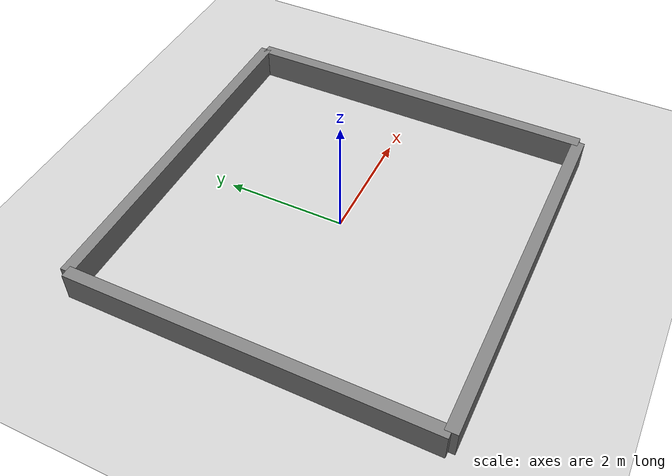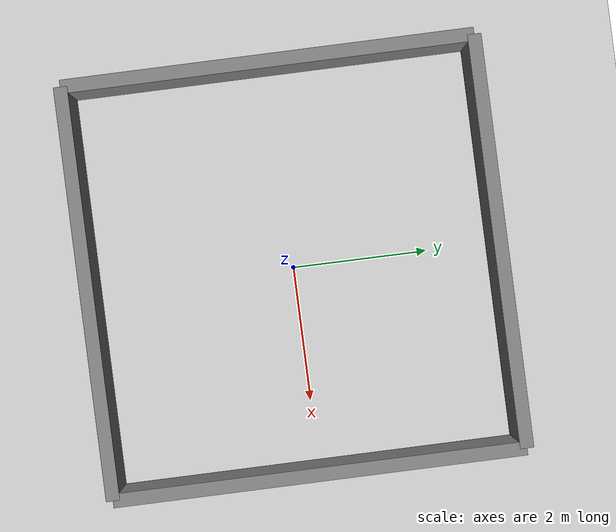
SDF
<sdf version="1.6">
 <world name="square_world">
  <include><uri>model://ground_plane</uri></include>
  <include><uri>model://sun</uri></include>
  <model name="wall_1">
   <static>true</static>
   <link name="link">
    <visual name="visual">
     <geometry><box><size>6 0.2 0.5</size></box></geometry>
     <material><ambient>0.5 0.5 0.5 1</ambient><diffuse>0.5 0.5 0.5 1</diffuse></material>
    </visual>
    <collision name="collision"><geometry><box><size>6 0.2 0.5</size></box></geometry></collision>
   </link>
   <pose>0 3 0.25 0 0 0</pose>
  </model>
  <model name="wall_2">
   <static>true</static>
   <link name="link">
    <visual name="visual">
     <geometry><box><size>6 0.2 0.5</size></box></geometry>
     <material><ambient>0.5 0.5 0.5 1</ambient><diffuse>0.5 0.5 0.5 1</diffuse></material>
    </visual>
    <collision name="collision"><geometry><box><size>6 0.2 0.5</size></box></geometry></collision>
   </link>
   <pose>0 -3 0.25 0 0 0</pose>
  </model>
  <model name="wall_3">
   <static>true</static>
   <link name="link">
    <visual name="visual">
     <geometry><box><size>0.2 6 0.5</size></box></geometry>
     <material><ambient>0.5 0.5 0.5 1</ambient><diffuse>0.5 0.5 0.5 1</diffuse></material>
    </visual>
    <collision name="collision"><geometry><box><size>0.2 6 0.5</size></box></geometry></collision>
   </link>
   <pose>3 0 0.25 0 0 0</pose>
  </model>
  <model name="wall_4">
   <static>true</static>
   <link name="link">
    <visual name="visual">
     <geometry><box><size>0.2 6 0.5</size></box></geometry>
     <material><ambient>0.5 0.5 0.5 1</ambient><diffuse>0.5 0.5 0.5 1</diffuse></material>
    </visual>
    <collision name="collision"><geometry><box><size>0.2 6 0.5</size></box></geometry></collision>
   </link>
   <pose>-3 0 0.25 0 0 0</pose>
  </model>
 </world>
</sdf>
